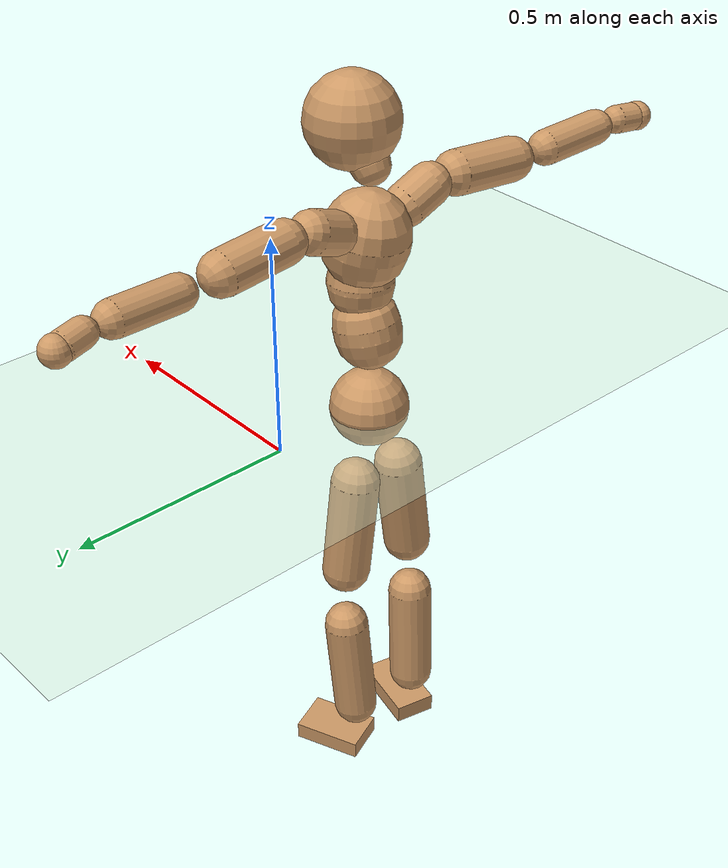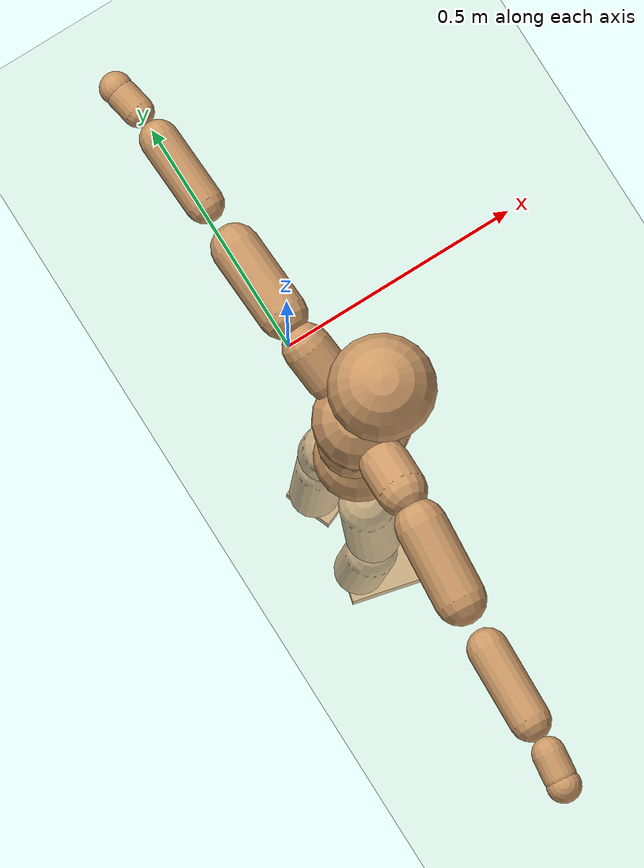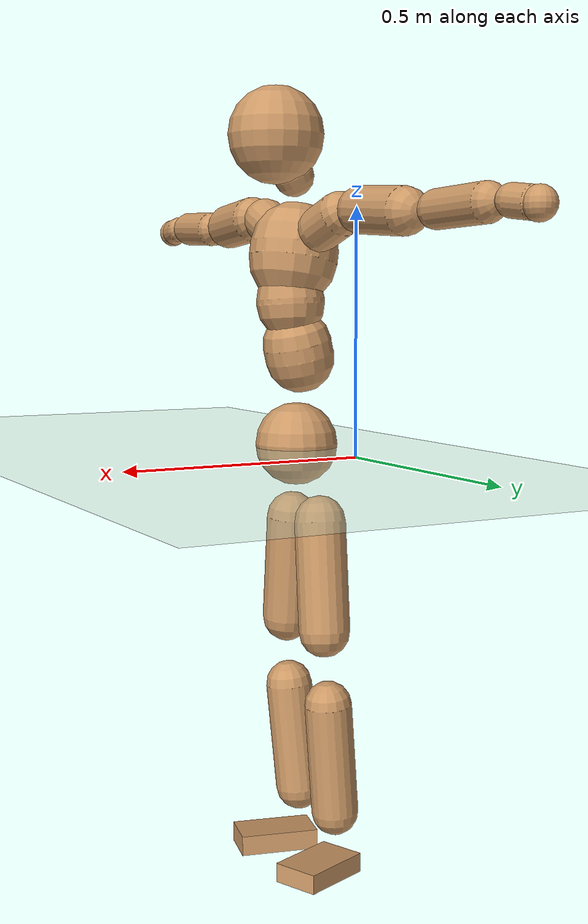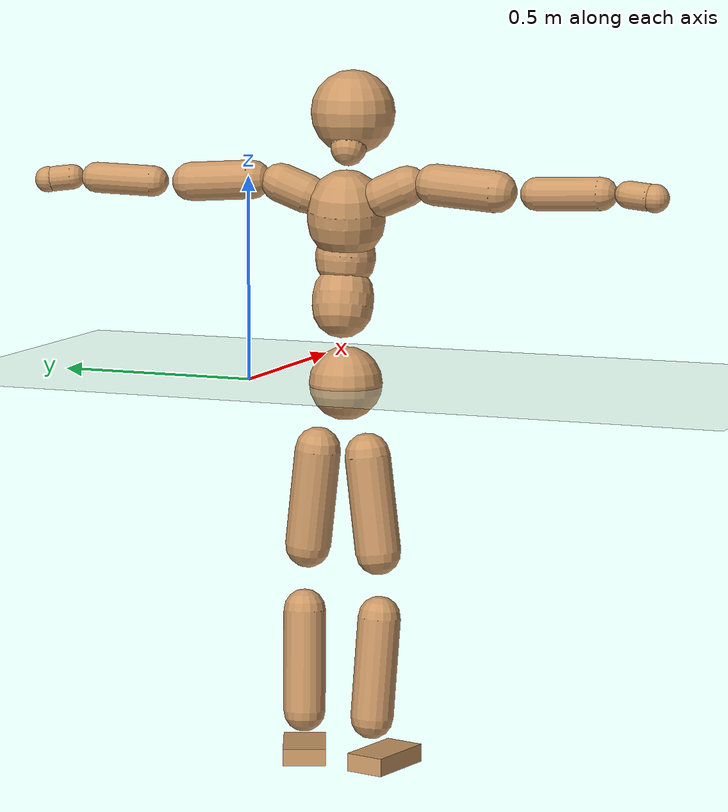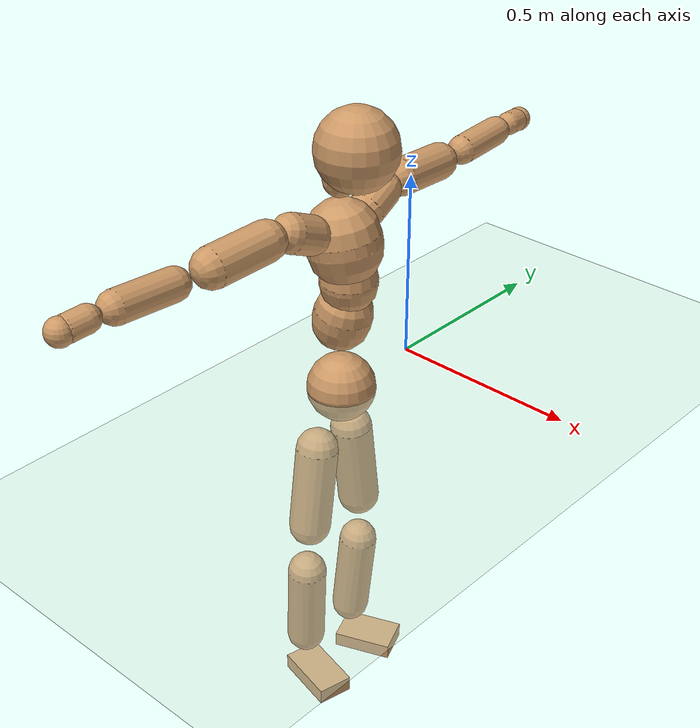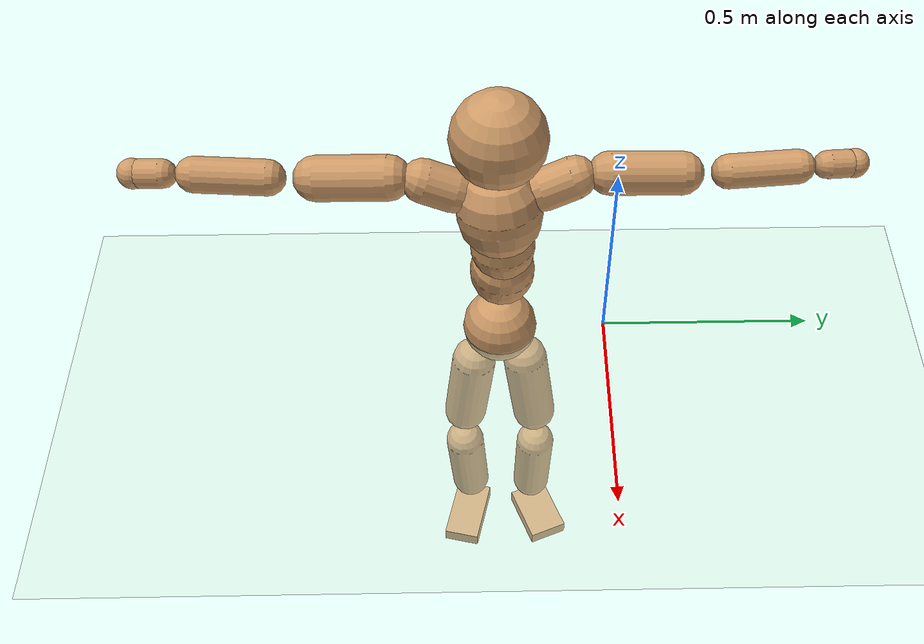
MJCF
<mujoco model="humanoid">
  <compiler coordinate="local" angle="radian"/>
  <default>
    <joint damping="0.0" armature="0.01" stiffness="0.0" limited="true"/>
    <geom conaffinity="1" condim="3" contype="7" margin="0.001" rgba="0.8 0.6 .4 1"/>
  </default>
  <asset>
    <texture type="skybox" builtin="gradient" rgb1=".4 .5 .6" rgb2="0 0 0" width="100" height="100"/>
    <texture builtin="flat" height="1278" mark="cross" markrgb="1 1 1" name="texgeom" random="0.01" rgb1="0.8 0.6 0.4" rgb2="0.8 0.6 0.4" type="cube" width="127"/>
    <texture builtin="checker" height="100" name="texplane" rgb1="0 0 0" rgb2="0.8 0.8 0.8" type="2d" width="100"/>
    <material name="MatPlane" reflectance="0.5" shininess="1" specular="1" texrepeat="60 60" texture="texplane"/>
    <material name="geom" texture="texgeom" texuniform="true"/>
  </asset>
  <worldbody>
    <light cutoff="100" diffuse="1 1 1" dir="-0 0 -1.3" directional="true" exponent="1" pos="0 0 1.3" specular=".1 .1 .1"/>
    <geom conaffinity="1" condim="3" name="floor" pos="0 0 0" rgba="0.8 0.9 0.8 1" size="100 100 .2" type="plane" material="MatPlane"/>
    <body name="Pelvis" pos="0.0013 -0.2547 0.0048">
      <freejoint name="Pelvis"/>
      <geom type="sphere" contype="1" conaffinity="1" density="500" size="0.0898" pos="0.0000 0.0000 0.0000" name="Pelvis"/>
      <body name="L_Hip" pos="-0.0253 0.0545 -0.0848">
        <joint name="L_Hip_x" type="hinge" pos="0 0 0" axis="1 0 0" stiffness="800" damping="80" armature="0.02" range="-180.0000 180.0000"/>
        <joint name="L_Hip_y" type="hinge" pos="0 0 0" axis="0 1 0" stiffness="800" damping="80" armature="0.02" range="-180.0000 180.0000"/>
        <joint name="L_Hip_z" type="hinge" pos="0 0 0" axis="0 0 1" stiffness="800" damping="80" armature="0.02" range="-180.0000 180.0000"/>
        <geom type="capsule" contype="1" conaffinity="1" density="500" fromto="0.0013 0.0092 -0.0797 0.0052 0.0368 -0.3186" size="0.056" name="L_Hip"/>
        <body name="L_Knee" pos="0.0065 0.046 -0.3983">
          <joint name="L_Knee_x" type="hinge" pos="0 0 0" axis="1 0 0" stiffness="800" damping="80" armature="0.02" range="-180.0000 180.0000"/>
          <joint name="L_Knee_y" type="hinge" pos="0 0 0" axis="0 1 0" stiffness="800" damping="80" armature="0.02" range="-180.0000 180.0000"/>
          <joint name="L_Knee_z" type="hinge" pos="0 0 0" axis="0 0 1" stiffness="800" damping="80" armature="0.02" range="-180.0000 180.0000"/>
          <geom type="capsule" contype="1" conaffinity="1" density="500" fromto="-0.0073 -0.0025 -0.0830 -0.0291 -0.0100 -0.3321" size="0.0518" name="L_Knee"/>
          <body name="L_Ankle" pos="-0.0363 -0.0125 -0.4152">
            <joint name="L_Ankle_x" type="hinge" pos="0 0 0" axis="1 0 0" stiffness="800" damping="80" armature="0.02" range="-180.0000 180.0000"/>
            <joint name="L_Ankle_y" type="hinge" pos="0 0 0" axis="0 1 0" stiffness="800" damping="80" armature="0.02" range="-180.0000 180.0000"/>
            <joint name="L_Ankle_z" type="hinge" pos="0 0 0" axis="0 0 1" stiffness="800" damping="80" armature="0.02" range="-180.0000 180.0000"/>
            <geom type="box" contype="1" conaffinity="1" density="500" pos="0.0591 0.0236 -0.0301" size="0.0811 0.0529 0.0211" quat="0.9820 0.0000 0.0000 0.1889" name="L_Ankle"/>
            <body name="L_Toe" pos="0.1181 0.0472 -0.0602">
              <joint name="L_Toe_x" type="hinge" pos="0 0 0" axis="1 0 0" stiffness="500" damping="50" armature="0.02" range="-180.0000 180.0000"/>
              <joint name="L_Toe_y" type="hinge" pos="0 0 0" axis="0 1 0" stiffness="500" damping="50" armature="0.02" range="-180.0000 180.0000"/>
              <joint name="L_Toe_z" type="hinge" pos="0 0 0" axis="0 0 1" stiffness="500" damping="50" armature="0.02" range="-180.0000 180.0000"/>
              <geom type="box" contype="1" conaffinity="1" density="500" pos="0.0000 0.0000 0.0321" size="0.001 0.0025 0.0012" quat="0.9812 0.0000 0.0000 0.1932" name="L_Toe"/>
            </body>
          </body>
        </body>
      </body>
      <body name="R_Hip" pos="-0.023 -0.0569 -0.093">
        <joint name="R_Hip_x" type="hinge" pos="0 0 0" axis="1 0 0" stiffness="800" damping="80" armature="0.02" range="-180.0000 180.0000"/>
        <joint name="R_Hip_y" type="hinge" pos="0 0 0" axis="0 1 0" stiffness="800" damping="80" armature="0.02" range="-180.0000 180.0000"/>
        <joint name="R_Hip_z" type="hinge" pos="0 0 0" axis="0 0 1" stiffness="800" damping="80" armature="0.02" range="-180.0000 180.0000"/>
        <geom type="capsule" contype="1" conaffinity="1" density="500" fromto="-0.0008 -0.0097 -0.0785 -0.0033 -0.0387 -0.3142" size="0.0558" name="R_Hip"/>
        <body name="R_Knee" pos="-0.0041 -0.0484 -0.3927">
          <joint name="R_Knee_x" type="hinge" pos="0 0 0" axis="1 0 0" stiffness="800" damping="80" armature="0.02" range="-180.0000 180.0000"/>
          <joint name="R_Knee_y" type="hinge" pos="0 0 0" axis="0 1 0" stiffness="800" damping="80" armature="0.02" range="-180.0000 180.0000"/>
          <joint name="R_Knee_z" type="hinge" pos="0 0 0" axis="0 0 1" stiffness="800" damping="80" armature="0.02" range="-180.0000 180.0000"/>
          <geom type="capsule" contype="1" conaffinity="1" density="500" fromto="-0.0066 0.0037 -0.0821 -0.0263 0.0147 -0.3284" size="0.0526" name="R_Knee"/>
          <body name="R_Ankle" pos="-0.0328 0.0184 -0.4105">
            <joint name="R_Ankle_x" type="hinge" pos="0 0 0" axis="1 0 0" stiffness="800" damping="80" armature="0.02" range="-180.0000 180.0000"/>
            <joint name="R_Ankle_y" type="hinge" pos="0 0 0" axis="0 1 0" stiffness="800" damping="80" armature="0.02" range="-180.0000 180.0000"/>
            <joint name="R_Ankle_z" type="hinge" pos="0 0 0" axis="0 0 1" stiffness="800" damping="80" armature="0.02" range="-180.0000 180.0000"/>
            <geom type="box" contype="1" conaffinity="1" density="500" pos="0.0637 -0.0149 -0.0323" size="0.0885 0.0493 0.0223" quat="0.9934 0.0000 0.0000 -0.1149" name="R_Ankle"/>
            <body name="R_Toe" pos="0.1274 -0.0299 -0.0646">
              <joint name="R_Toe_x" type="hinge" pos="0 0 0" axis="1 0 0" stiffness="500" damping="50" armature="0.02" range="-180.0000 180.0000"/>
              <joint name="R_Toe_y" type="hinge" pos="0 0 0" axis="0 1 0" stiffness="500" damping="50" armature="0.02" range="-180.0000 180.0000"/>
              <joint name="R_Toe_z" type="hinge" pos="0 0 0" axis="0 0 1" stiffness="500" damping="50" armature="0.02" range="-180.0000 180.0000"/>
              <geom type="box" contype="1" conaffinity="1" density="500" pos="0.0000 0.0000 0.0347" size="0.001 0.0024 0.0012" quat="0.9944 0.0000 0.0000 -0.1059" name="R_Toe"/>
            </body>
          </body>
        </body>
      </body>
      <body name="Torso" pos="-0.021 0.0041 0.1259">
        <joint name="Torso_x" type="hinge" pos="0 0 0" axis="1 0 0" stiffness="1000" damping="100" armature="0.02" range="-180.0000 180.0000"/>
        <joint name="Torso_y" type="hinge" pos="0 0 0" axis="0 1 0" stiffness="1000" damping="100" armature="0.02" range="-180.0000 180.0000"/>
        <joint name="Torso_z" type="hinge" pos="0 0 0" axis="0 0 1" stiffness="1000" damping="100" armature="0.02" range="-180.0000 180.0000"/>
        <geom type="capsule" contype="1" conaffinity="1" density="500" fromto="0.0226 0.0031 0.0900 0.0151 0.0020 0.0600" size="0.0745" name="Torso"/>
        <body name="Spine" pos="0.0376 0.0051 0.1501">
          <joint name="Spine_x" type="hinge" pos="0 0 0" axis="1 0 0" stiffness="1000" damping="100" armature="0.02" range="-180.0000 180.0000"/>
          <joint name="Spine_y" type="hinge" pos="0 0 0" axis="0 1 0" stiffness="1000" damping="100" armature="0.02" range="-180.0000 180.0000"/>
          <joint name="Spine_z" type="hinge" pos="0 0 0" axis="0 0 1" stiffness="1000" damping="100" armature="0.02" range="-180.0000 180.0000"/>
          <geom type="capsule" contype="1" conaffinity="1" density="500" fromto="0.0012 -0.0019 0.0361 0.0008 -0.0013 0.0241" size="0.0732" name="Spine"/>
          <body name="Chest" pos="0.0019 -0.0032 0.0602">
            <joint name="Chest_x" type="hinge" pos="0 0 0" axis="1 0 0" stiffness="1000" damping="100" armature="0.02" range="-180.0000 180.0000"/>
            <joint name="Chest_y" type="hinge" pos="0 0 0" axis="0 1 0" stiffness="1000" damping="100" armature="0.02" range="-180.0000 180.0000"/>
            <joint name="Chest_z" type="hinge" pos="0 0 0" axis="0 0 1" stiffness="1000" damping="100" armature="0.02" range="-180.0000 180.0000"/>
            <geom type="capsule" contype="1" conaffinity="1" density="500" fromto="-0.0147 -0.0057 0.0878 -0.0098 -0.0038 0.0585" size="0.095" name="Chest"/>
            <body name="Neck" pos="-0.028 -0.0138 0.2146">
              <joint name="Neck_x" type="hinge" pos="0 0 0" axis="1 0 0" stiffness="500" damping="50" armature="0.02" range="-180.0000 180.0000"/>
              <joint name="Neck_y" type="hinge" pos="0 0 0" axis="0 1 0" stiffness="500" damping="50" armature="0.02" range="-180.0000 180.0000"/>
              <joint name="Neck_z" type="hinge" pos="0 0 0" axis="0 0 1" stiffness="500" damping="50" armature="0.02" range="-180.0000 180.0000"/>
              <geom type="capsule" contype="1" conaffinity="1" density="500" fromto="0.0114 0.0016 0.0207 0.0457 0.0064 0.0828" size="0.0435" name="Neck"/>
              <body name="Head" pos="0.0571 0.008 0.1035">
                <joint name="Head_x" type="hinge" pos="0 0 0" axis="1 0 0" stiffness="500" damping="50" armature="0.02" range="-180.0000 180.0000"/>
                <joint name="Head_y" type="hinge" pos="0 0 0" axis="0 1 0" stiffness="500" damping="50" armature="0.02" range="-180.0000 180.0000"/>
                <joint name="Head_z" type="hinge" pos="0 0 0" axis="0 0 1" stiffness="500" damping="50" armature="0.02" range="-180.0000 180.0000"/>
                <geom type="sphere" contype="1" conaffinity="1" density="500" size="0.1025" pos="0.0000 0.0000 0.0000" name="Head"/>
              </body>
            </body>
            <body name="L_Thorax" pos="-0.0218 0.0673 0.1118">
              <joint name="L_Thorax_x" type="hinge" pos="0 0 0" axis="1 0 0" stiffness="500" damping="50" armature="0.02" range="-180.0000 180.0000"/>
              <joint name="L_Thorax_y" type="hinge" pos="0 0 0" axis="0 1 0" stiffness="500" damping="50" armature="0.02" range="-180.0000 180.0000"/>
              <joint name="L_Thorax_z" type="hinge" pos="0 0 0" axis="0 0 1" stiffness="500" damping="50" armature="0.02" range="-180.0000 180.0000"/>
              <geom type="capsule" contype="1" conaffinity="1" density="500" fromto="-0.0030 0.0224 0.0090 -0.0119 0.0898 0.0359" size="0.0475" name="L_Thorax"/>
              <body name="L_Shoulder" pos="-0.0149 0.1122 0.0449">
                <joint name="L_Shoulder_x" type="hinge" pos="0 0 0" axis="1 0 0" stiffness="500" damping="50" armature="0.02" range="-720.0000 720.0000"/>
                <joint name="L_Shoulder_y" type="hinge" pos="0 0 0" axis="0 1 0" stiffness="500" damping="50" armature="0.02" range="-720.0000 720.0000"/>
                <joint name="L_Shoulder_z" type="hinge" pos="0 0 0" axis="0 0 1" stiffness="500" damping="50" armature="0.02" range="-720.0000 720.0000"/>
                <geom type="capsule" contype="1" conaffinity="1" density="500" fromto="-0.0024 0.0521 -0.0032 -0.0095 0.2084 -0.0129" size="0.0478" name="L_Shoulder"/>
                <body name="L_Elbow" pos="-0.0118 0.2606 -0.0161">
                  <joint name="L_Elbow_x" type="hinge" pos="0 0 0" axis="1 0 0" stiffness="500" damping="50" armature="0.02" range="-720.0000 720.0000"/>
                  <joint name="L_Elbow_y" type="hinge" pos="0 0 0" axis="0 1 0" stiffness="500" damping="50" armature="0.02" range="-720.0000 720.0000"/>
                  <joint name="L_Elbow_z" type="hinge" pos="0 0 0" axis="0 0 1" stiffness="500" damping="50" armature="0.02" range="-720.0000 720.0000"/>
                  <geom type="capsule" contype="1" conaffinity="1" density="500" fromto="-0.0025 0.0497 0.0016 -0.0099 0.1988 0.0066" size="0.038" name="L_Elbow"/>
                  <body name="L_Wrist" pos="-0.0124 0.2485 0.0082">
                    <joint name="L_Wrist_x" type="hinge" pos="0 0 0" axis="1 0 0" stiffness="300" damping="30" armature="0.02" range="-180.0000 180.0000"/>
                    <joint name="L_Wrist_y" type="hinge" pos="0 0 0" axis="0 1 0" stiffness="300" damping="30" armature="0.02" range="-180.0000 180.0000"/>
                    <joint name="L_Wrist_z" type="hinge" pos="0 0 0" axis="0 0 1" stiffness="300" damping="30" armature="0.02" range="-180.0000 180.0000"/>
                    <geom type="capsule" contype="1" conaffinity="1" density="500" fromto="-0.0028 0.0155 -0.0019 -0.0112 0.0621 -0.0074" size="0.0309" name="L_Wrist"/>
                    <body name="L_Hand" pos="-0.014 0.0777 -0.0093">
                      <joint name="L_Hand_x" type="hinge" pos="0 0 0" axis="1 0 0" stiffness="300" damping="30" armature="0.02" range="-180.0000 180.0000"/>
                      <joint name="L_Hand_y" type="hinge" pos="0 0 0" axis="0 1 0" stiffness="300" damping="30" armature="0.02" range="-180.0000 180.0000"/>
                      <joint name="L_Hand_z" type="hinge" pos="0 0 0" axis="0 0 1" stiffness="300" damping="30" armature="0.02" range="-180.0000 180.0000"/>
                      <geom type="sphere" contype="1" conaffinity="1" density="500" size="0.0321" pos="0.0000 0.0000 0.0000" name="L_Hand"/>
                    </body>
                  </body>
                </body>
              </body>
            </body>
            <body name="R_Thorax" pos="-0.0235 -0.082 0.1125">
              <joint name="R_Thorax_x" type="hinge" pos="0 0 0" axis="1 0 0" stiffness="500" damping="50" armature="0.02" range="-180.0000 180.0000"/>
              <joint name="R_Thorax_y" type="hinge" pos="0 0 0" axis="0 1 0" stiffness="500" damping="50" armature="0.02" range="-180.0000 180.0000"/>
              <joint name="R_Thorax_z" type="hinge" pos="0 0 0" axis="0 0 1" stiffness="500" damping="50" armature="0.02" range="-180.0000 180.0000"/>
              <geom type="capsule" contype="1" conaffinity="1" density="500" fromto="-0.0009 -0.0214 0.0092 -0.0034 -0.0854 0.0368" size="0.0487" name="R_Thorax"/>
              <body name="R_Shoulder" pos="-0.0043 -0.1068 0.046">
                <joint name="R_Shoulder_x" type="hinge" pos="0 0 0" axis="1 0 0" stiffness="500" damping="50" armature="0.02" range="-720.0000 720.0000"/>
                <joint name="R_Shoulder_y" type="hinge" pos="0 0 0" axis="0 1 0" stiffness="500" damping="50" armature="0.02" range="-720.0000 720.0000"/>
                <joint name="R_Shoulder_z" type="hinge" pos="0 0 0" axis="0 0 1" stiffness="500" damping="50" armature="0.02" range="-720.0000 720.0000"/>
                <geom type="capsule" contype="1" conaffinity="1" density="500" fromto="-0.0039 -0.0520 -0.0035 -0.0154 -0.2081 -0.0142" size="0.0502" name="R_Shoulder"/>
                <body name="R_Elbow" pos="-0.0193 -0.2601 -0.0177">
                  <joint name="R_Elbow_x" type="hinge" pos="0 0 0" axis="1 0 0" stiffness="500" damping="50" armature="0.02" range="-720.0000 720.0000"/>
                  <joint name="R_Elbow_y" type="hinge" pos="0 0 0" axis="0 1 0" stiffness="500" damping="50" armature="0.02" range="-720.0000 720.0000"/>
                  <joint name="R_Elbow_z" type="hinge" pos="0 0 0" axis="0 0 1" stiffness="500" damping="50" armature="0.02" range="-720.0000 720.0000"/>
                  <geom type="capsule" contype="1" conaffinity="1" density="500" fromto="-0.0018 -0.0523 0.0021 -0.0074 -0.2093 0.0083" size="0.0399" name="R_Elbow"/>
                  <body name="R_Wrist" pos="-0.0092 -0.2616 0.0104">
                    <joint name="R_Wrist_x" type="hinge" pos="0 0 0" axis="1 0 0" stiffness="300" damping="30" armature="0.02" range="-180.0000 180.0000"/>
                    <joint name="R_Wrist_y" type="hinge" pos="0 0 0" axis="0 1 0" stiffness="300" damping="30" armature="0.02" range="-180.0000 180.0000"/>
                    <joint name="R_Wrist_z" type="hinge" pos="0 0 0" axis="0 0 1" stiffness="300" damping="30" armature="0.02" range="-180.0000 180.0000"/>
                    <geom type="capsule" contype="1" conaffinity="1" density="500" fromto="-0.0018 -0.0164 -0.0015 -0.0073 -0.0656 -0.0060" size="0.0323" name="R_Wrist"/>
                    <body name="R_Hand" pos="-0.0091 -0.082 -0.0075">
                      <joint name="R_Hand_x" type="hinge" pos="0 0 0" axis="1 0 0" stiffness="300" damping="30" armature="0.02" range="-180.0000 180.0000"/>
                      <joint name="R_Hand_y" type="hinge" pos="0 0 0" axis="0 1 0" stiffness="300" damping="30" armature="0.02" range="-180.0000 180.0000"/>
                      <joint name="R_Hand_z" type="hinge" pos="0 0 0" axis="0 0 1" stiffness="300" damping="30" armature="0.02" range="-180.0000 180.0000"/>
                      <geom type="sphere" contype="1" conaffinity="1" density="500" size="0.0335" pos="0.0000 0.0000 0.0000" name="R_Hand"/>
                    </body>
                  </body>
                </body>
              </body>
            </body>
          </body>
        </body>
      </body>
    </body>
  </worldbody>
  <actuator>
    <motor name="L_Hip_x" joint="L_Hip_x" gear="500"/>
    <motor name="L_Hip_y" joint="L_Hip_y" gear="500"/>
    <motor name="L_Hip_z" joint="L_Hip_z" gear="500"/>
    <motor name="L_Knee_x" joint="L_Knee_x" gear="500"/>
    <motor name="L_Knee_y" joint="L_Knee_y" gear="500"/>
    <motor name="L_Knee_z" joint="L_Knee_z" gear="500"/>
    <motor name="L_Ankle_x" joint="L_Ankle_x" gear="500"/>
    <motor name="L_Ankle_y" joint="L_Ankle_y" gear="500"/>
    <motor name="L_Ankle_z" joint="L_Ankle_z" gear="500"/>
    <motor name="L_Toe_x" joint="L_Toe_x" gear="500"/>
    <motor name="L_Toe_y" joint="L_Toe_y" gear="500"/>
    <motor name="L_Toe_z" joint="L_Toe_z" gear="500"/>
    <motor name="R_Hip_x" joint="R_Hip_x" gear="500"/>
    <motor name="R_Hip_y" joint="R_Hip_y" gear="500"/>
    <motor name="R_Hip_z" joint="R_Hip_z" gear="500"/>
    <motor name="R_Knee_x" joint="R_Knee_x" gear="500"/>
    <motor name="R_Knee_y" joint="R_Knee_y" gear="500"/>
    <motor name="R_Knee_z" joint="R_Knee_z" gear="500"/>
    <motor name="R_Ankle_x" joint="R_Ankle_x" gear="500"/>
    <motor name="R_Ankle_y" joint="R_Ankle_y" gear="500"/>
    <motor name="R_Ankle_z" joint="R_Ankle_z" gear="500"/>
    <motor name="R_Toe_x" joint="R_Toe_x" gear="500"/>
    <motor name="R_Toe_y" joint="R_Toe_y" gear="500"/>
    <motor name="R_Toe_z" joint="R_Toe_z" gear="500"/>
    <motor name="Torso_x" joint="Torso_x" gear="500"/>
    <motor name="Torso_y" joint="Torso_y" gear="500"/>
    <motor name="Torso_z" joint="Torso_z" gear="500"/>
    <motor name="Spine_x" joint="Spine_x" gear="500"/>
    <motor name="Spine_y" joint="Spine_y" gear="500"/>
    <motor name="Spine_z" joint="Spine_z" gear="500"/>
    <motor name="Chest_x" joint="Chest_x" gear="500"/>
    <motor name="Chest_y" joint="Chest_y" gear="500"/>
    <motor name="Chest_z" joint="Chest_z" gear="500"/>
    <motor name="Neck_x" joint="Neck_x" gear="500"/>
    <motor name="Neck_y" joint="Neck_y" gear="500"/>
    <motor name="Neck_z" joint="Neck_z" gear="500"/>
    <motor name="Head_x" joint="Head_x" gear="500"/>
    <motor name="Head_y" joint="Head_y" gear="500"/>
    <motor name="Head_z" joint="Head_z" gear="500"/>
    <motor name="L_Thorax_x" joint="L_Thorax_x" gear="500"/>
    <motor name="L_Thorax_y" joint="L_Thorax_y" gear="500"/>
    <motor name="L_Thorax_z" joint="L_Thorax_z" gear="500"/>
    <motor name="L_Shoulder_x" joint="L_Shoulder_x" gear="500"/>
    <motor name="L_Shoulder_y" joint="L_Shoulder_y" gear="500"/>
    <motor name="L_Shoulder_z" joint="L_Shoulder_z" gear="500"/>
    <motor name="L_Elbow_x" joint="L_Elbow_x" gear="500"/>
    <motor name="L_Elbow_y" joint="L_Elbow_y" gear="500"/>
    <motor name="L_Elbow_z" joint="L_Elbow_z" gear="500"/>
    <motor name="L_Wrist_x" joint="L_Wrist_x" gear="500"/>
    <motor name="L_Wrist_y" joint="L_Wrist_y" gear="500"/>
    <motor name="L_Wrist_z" joint="L_Wrist_z" gear="500"/>
    <motor name="L_Hand_x" joint="L_Hand_x" gear="500"/>
    <motor name="L_Hand_y" joint="L_Hand_y" gear="500"/>
    <motor name="L_Hand_z" joint="L_Hand_z" gear="500"/>
    <motor name="R_Thorax_x" joint="R_Thorax_x" gear="500"/>
    <motor name="R_Thorax_y" joint="R_Thorax_y" gear="500"/>
    <motor name="R_Thorax_z" joint="R_Thorax_z" gear="500"/>
    <motor name="R_Shoulder_x" joint="R_Shoulder_x" gear="500"/>
    <motor name="R_Shoulder_y" joint="R_Shoulder_y" gear="500"/>
    <motor name="R_Shoulder_z" joint="R_Shoulder_z" gear="500"/>
    <motor name="R_Elbow_x" joint="R_Elbow_x" gear="500"/>
    <motor name="R_Elbow_y" joint="R_Elbow_y" gear="500"/>
    <motor name="R_Elbow_z" joint="R_Elbow_z" gear="500"/>
    <motor name="R_Wrist_x" joint="R_Wrist_x" gear="500"/>
    <motor name="R_Wrist_y" joint="R_Wrist_y" gear="500"/>
    <motor name="R_Wrist_z" joint="R_Wrist_z" gear="500"/>
    <motor name="R_Hand_x" joint="R_Hand_x" gear="500"/>
    <motor name="R_Hand_y" joint="R_Hand_y" gear="500"/>
    <motor name="R_Hand_z" joint="R_Hand_z" gear="500"/>
  </actuator>
  <contact>
    <exclude body1="Torso" body2="Chest"/>
    <exclude body1="Head" body2="Chest"/>
    <exclude body1="R_Knee" body2="R_Toe"/>
    <exclude body1="R_Knee" body2="L_Ankle"/>
    <exclude body1="R_Knee" body2="L_Toe"/>
    <exclude body1="L_Knee" body2="L_Toe"/>
    <exclude body1="L_Knee" body2="R_Ankle"/>
    <exclude body1="L_Knee" body2="R_Toe"/>
    <exclude body1="L_Shoulder" body2="Chest"/>
    <exclude body1="R_Shoulder" body2="Chest"/>
  </contact>
  <sensor/>
  <size njmax="700" nconmax="700"/>
</mujoco>
